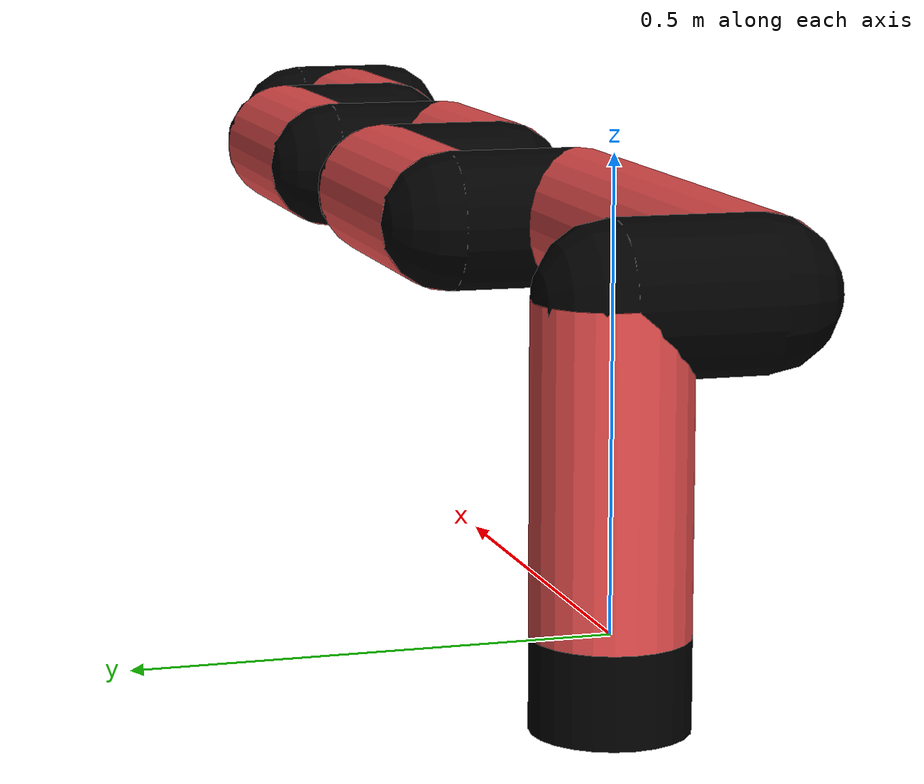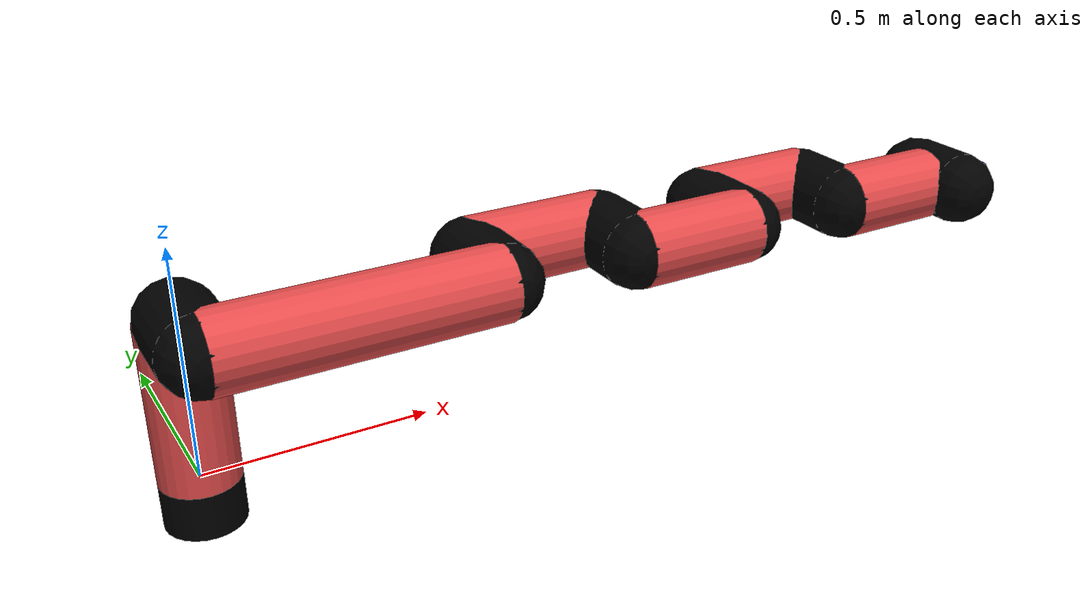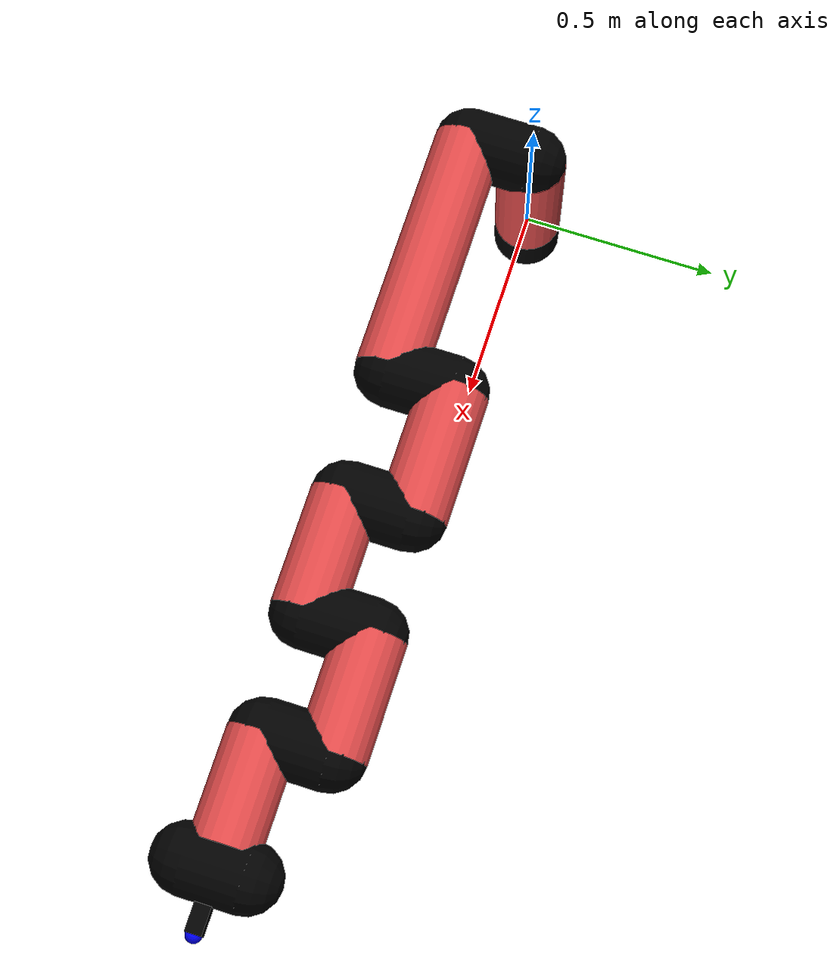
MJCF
<mujoco model="manipulator">
		<compiler angle="degree" coordinate="local" inertiafromgeom="auto" meshdir="meshes/"/>
		<option gravity="0 0 0" integrator="RK4" iterations="30" timestep="0.01"/>

		<default>
		<joint armature="1" limited="true" stiffness="10" damping="15" frictionloss="5.0"/>
		<geom conaffinity="1" condim="3" contype="1" friction=".5 .1 .1" margin="0.002"/>
		<motor ctrllimited="true"/>
		<position ctrllimited="true"/>
		</default>

		<asset>
		<texture builtin="gradient" height="100" rgb1="1.0 1.0 1.0" rgb2="1.0 1.0 1.0" type="skybox" width="100"/>
		<texture builtin="flat" height="32" name="arm_tex" rgb1="0.9 0.3 0.3" type="2d" width="32"/>
		<texture builtin="flat" height="32" name="gripper_tex" rgb1="0.0 0.0 0.0" type="cube" width="32"/>

		<material name="arm_mat" shininess="0.1" specular="0.1" texture="arm_tex"/>
		<material name="gripper_mat" shininess="1" specular="1" texture="gripper_tex"/>
		</asset>

		<worldbody>
		<light cutoff="45" diffuse=".8 .8 .8" dir="0 0.16 -1" directional="false" name="light" pos="0 -2.0 8.0" specular="0.3 0.3 0.3"/>

		<body name="base_link" pos="0 0 -0.1">
		<geom fromto="0 0 0 0 0 0.1" material="arm_mat" name="base_link" rgba="0.0 0.0 0.0 1" size="0.085" type="cylinder"/>
		</body>

		<body name="l1" pos="0 0 0">
<geom fromto="0 0 0 0 0 0.35" material="arm_mat" name="l1" rgba="0.9 0.3 0.3 1" size="0.085" type="cylinder"/>
<geom fromto="0 0 0.35 0 -0.16 0.35" material="arm_mat" name="l1_ex" rgba="0.0 0.0 0.0 1" size="0.085" type="capsule"/>
<joint axis="0 0 1" name="j1" pos="0 0 0" range="-90 90" damping="27.48" frictionloss="10.63"/>

<body name="l2" pos="0 -0.16 0.35">
<geom fromto="0 0 0 0.62 0 0" material="arm_mat" name="l2" rgba="0.9 0.3 0.3 1" size="0.085" type="cylinder"/>
<geom fromto="0.62 0 0 0.62 0.16 0" material="arm_mat" name="l2_ex" rgba="0.0 0.0 0.0 1" size="0.085" type="capsule"/>
<joint axis="0.0 1.0 0.0" name="j2" pos="0 0 0" range="-90 60" damping="23.15" frictionloss="11.4"/>

<body name="l3" pos="0.62 0.16 0">
<geom fromto="0 0 0 0.32 0 0" material="arm_mat" name="l3" rgba="0.9 0.3 0.3 1" size="0.085" type="cylinder"/>
<geom fromto="0.32 0 0 0.32 -0.16 0" material="arm_mat" name="l3_ex" rgba="0.0 0.0 0.0 1" size="0.085" type="capsule"/>
<joint axis="0.0 1.0 0.0" name="j3" pos="0 0 0" range="-30 60" damping="22.57" frictionloss="9.13"/>

<body name="l4" pos="0.32 -0.16 0">
<geom fromto="0 0 0 0.29 0 0" material="arm_mat" name="l4" rgba="0.9 0.3 0.3 1" size="0.085" type="cylinder"/>
<geom fromto="0.29 0 0 0.29 0.16 0" material="arm_mat" name="l4_ex" rgba="0.0 0.0 0.0 1" size="0.085" type="capsule"/>
<joint axis="0.0 1.0 0.0" name="j4" pos="0 0 0" range="-30 60" damping="31.79" frictionloss="7.59"/>

<body name="l5" pos="0.29 0.16 0">
<geom fromto="0 0 0 0.29 0 0" material="arm_mat" name="l5" rgba="0.9 0.3 0.3 1" size="0.085" type="cylinder"/>
<geom fromto="0.29 0 0 0.29 -0.16 0" material="arm_mat" name="l5_ex" rgba="0.0 0.0 0.0 1" size="0.085" type="capsule"/>
<joint axis="0.0 1.0 0.0" name="j5" pos="0 0 0" range="-30 60" damping="35.59" frictionloss="9.48"/>

<body name="l6" pos="0.29 -0.16 0">
<geom fromto="0 0 0 0.26 0 0" material="arm_mat" name="l6" rgba="0.9 0.3 0.3 1" size="0.085" type="cylinder"/>
<joint axis="0.0 1.0 0.0" name="j6" pos="0 0 0" range="-30 60" damping="35.62" frictionloss="9.93"/>

<body name="gripper" pos="0.26 0 0">
<geom fromto="0.05 -0.07 0 0.05 0.07 0" material="gripper_mat" name="gripper" rgba="0.0 0.0 0.0 1" size="0.085" type="capsule"/><joint axis="1 0 0" name="j7" pos="0 0 0" range="-90 90" damping="15" frictionloss="5.0"/><body name="finger" pos="0.1 0 0">
<geom fromto="0 0.0 0 0.1 0.0 0" material="gripper_mat" name="finger" rgba="0.0 0.0 0.0 1" size="0.020 0.06 0.06" type="box"/>
</body>
<site name="current" pos="0.2 0. 0.0" rgba="0. 0. 1.0 1" size="0.02" type="sphere"/>
</body>
</body>
</body>
</body>
</body>
</body>
</body>
</worldbody>
<actuator>
<motor ctrllimited="true" ctrlrange="-1.0 1.0" joint="j1" gear="65.64"/>
<motor ctrllimited="true" ctrlrange="-1.0 1.0" joint="j2" gear="66.66"/>
<motor ctrllimited="true" ctrlrange="-1.0 1.0" joint="j3" gear="61.65"/>
<motor ctrllimited="true" ctrlrange="-1.0 1.0" joint="j4" gear="81.98"/>
<motor ctrllimited="true" ctrlrange="-1.0 1.0" joint="j5" gear="61.1"/>
<motor ctrllimited="true" ctrlrange="-1.0 1.0" joint="j6" gear="75.62"/>
<motor ctrllimited="true" ctrlrange="-1.0 1.0" joint="j7" gear="80"/>
</actuator>
</mujoco>
